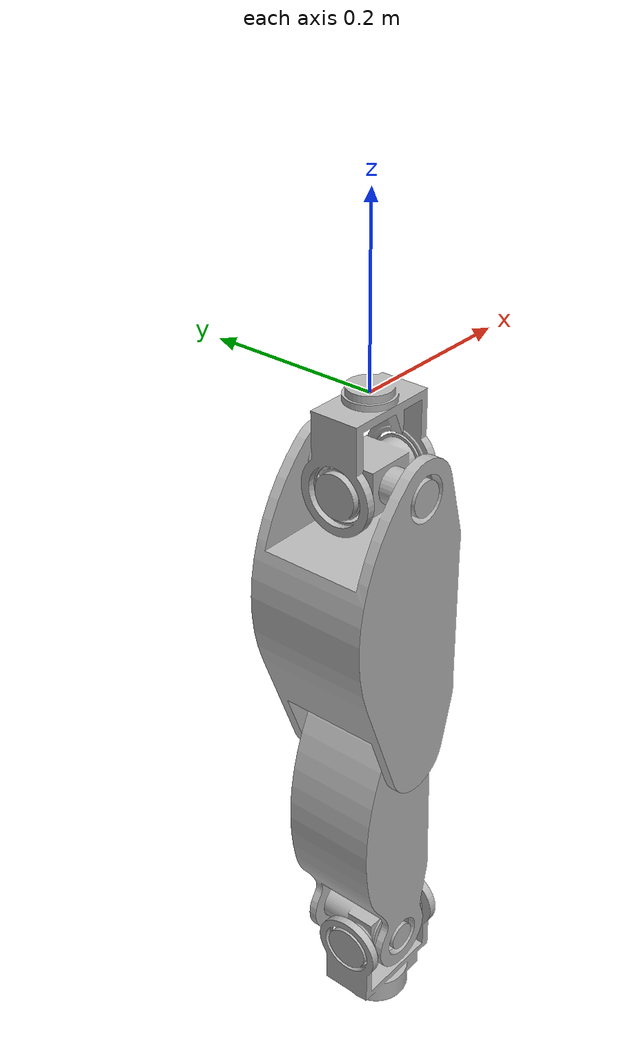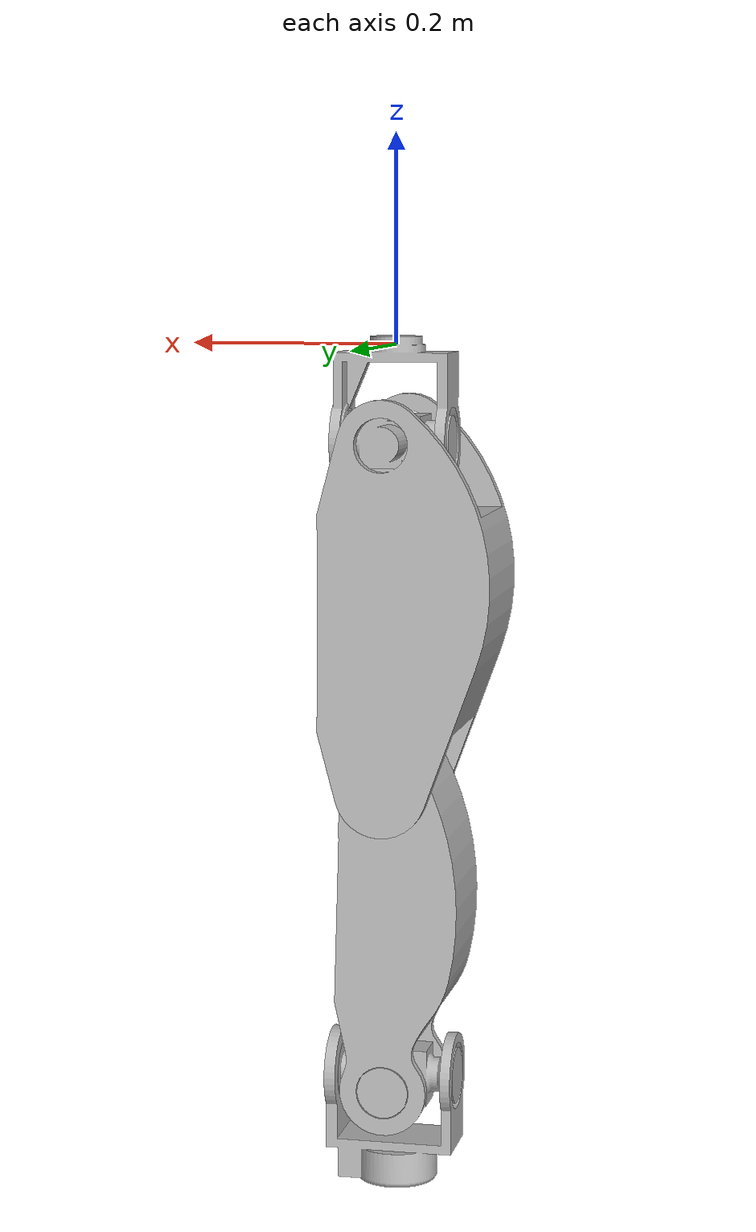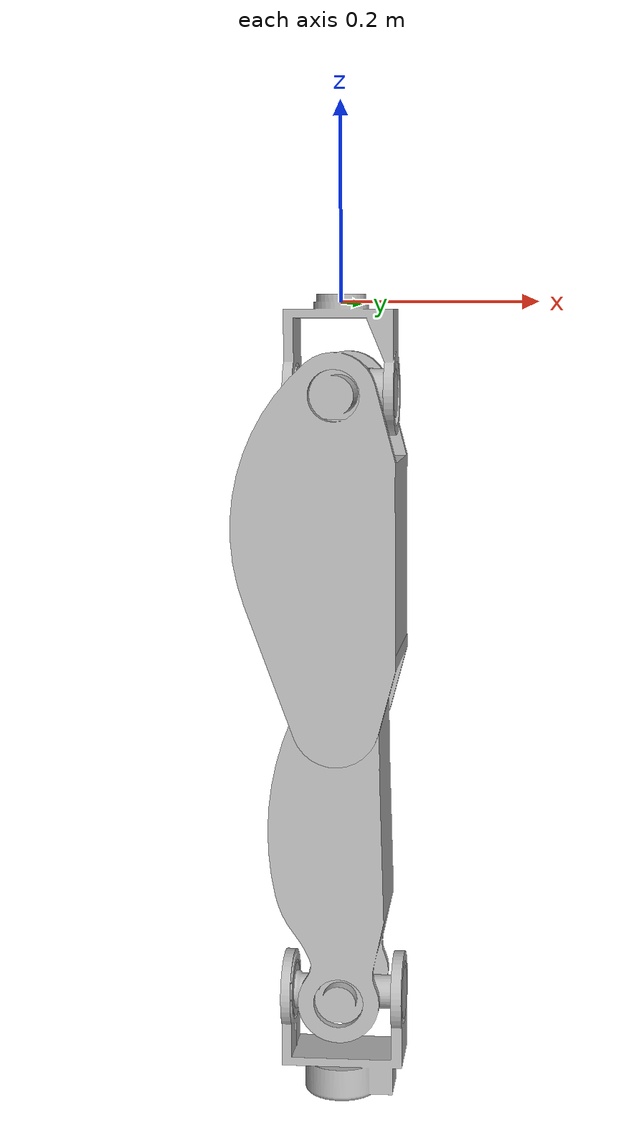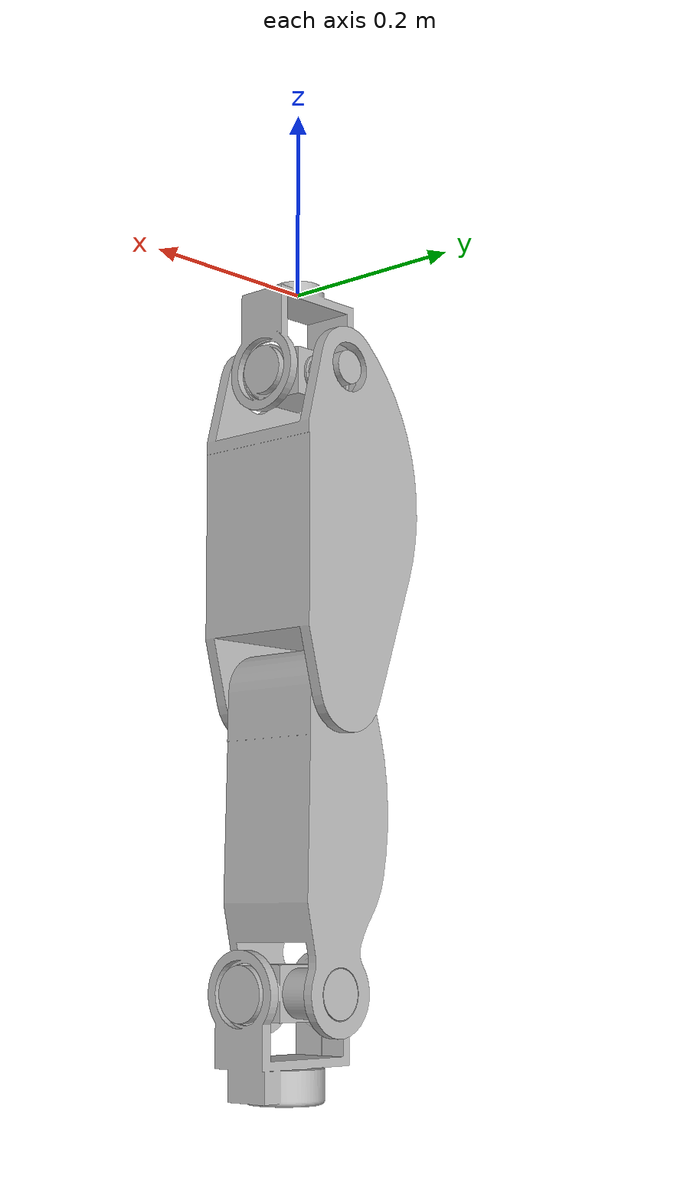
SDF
<?xml version='1.0'?>
<sdf version='1.6'>
  <model name='teo_leftLeg'>

    <link name='AxialLeftHip_link'>
      <pose>0 0 0 0 -0 0</pose>
      <inertial>
        <pose>0.000089 -0.000389 -0.065985 0 -0 0</pose>
        <mass>0.84945</mass>
        <inertia>
          <ixx>0.001564202</ixx>
          <ixy>0.0000025</ixy>
          <ixz>0</ixz>
          <iyy>0.002645089</iyy>
          <iyz>0</iyz>
          <izz>0.001706349</izz>
        </inertia>
      </inertial>
      <visual name='AxialLeftHip_visual'>
        <geometry>
          <mesh>
            <uri>model://teo/meshes/visual/AxialLeftHip.dae</uri>
          </mesh>
        </geometry>
      </visual>
    </link>

    <joint name='AxialLeftHip' type='revolute'>
      <parent>teo::RootWaist_links</parent>
      <child>teo_leftLeg::AxialLeftHip_link</child>
      <axis>
        <xyz>0 0 1</xyz>
        <limit>
          <lower>-0.49</lower>
          <upper>0.57</upper>
        </limit>
      </axis>
    </joint>

    <link name='SagittalLeftHip_link'>
      <pose>0 0 -0.092 0 -0 0</pose>
      <inertial>
        <pose>-0.00011 -0.000988 0.000214 0 -0 0</pose>
        <mass>1.45459</mass>
        <inertia>
          <ixx>0.001545815</ixx>
          <ixy>-0.00000297</ixy>
          <ixz>-4.07e-09</ixz>
          <iyy>0.00119159</iyy>
          <iyz>9.16e-09</iyz>
          <izz>0.002270482</izz>
        </inertia>
      </inertial>
      <visual name='SagittalLeftHip_visual'>
        <geometry>
          <mesh>
            <uri>model://teo/meshes/visual/SagittalLeftHip.dae</uri>
          </mesh>
        </geometry>
      </visual>
    </link>

    <joint name='SagittalLeftHip' type='revolute'>
      <parent>teo_leftLeg::AxialLeftHip_link</parent>
      <child>teo_leftLeg::SagittalLeftHip_link</child>
      <axis>
        <xyz>1 0 0</xyz>
        <limit>
          <lower>-0.22</lower>
          <upper>0.25</upper>
        </limit>
      </axis>
    </joint>

    <link name='FrontalLeftHip_link'>
      <pose>0 0 -0.092 0 -0 0</pose>
      <inertial>
        <pose>-0.010862 -0.000006 -0.161205 0 -0 0</pose>
        <mass>1.89152</mass>
        <inertia>
          <ixx>0.015077735</ixx>
          <ixy>0</ixy>
          <ixz>-0.000442074</ixz>
          <iyy>0.015112044</iyy>
          <iyz>0</iyz>
          <izz>0.00747346</izz>
        </inertia>
      </inertial>
      <visual name='FrontalLeftHip_visual'>
        <geometry>
          <mesh>
            <uri>model://teo/meshes/visual/FrontalLeftHip.dae</uri>
          </mesh>
        </geometry>
      </visual>
    </link>

    <joint name='FrontalLeftHip' type='revolute'>
      <parent>teo_leftLeg::SagittalLeftHip_link</parent>
      <child>teo_leftLeg::FrontalLeftHip_link</child>
      <axis>
        <xyz>0 1 0</xyz>
        <limit>
          <lower>-0.55</lower>
          <upper>0.74</upper>
        </limit>
      </axis>
    </joint>

    <link name='FrontalLeftKnee_link'>
      <pose>0 0 -0.422 0 -0 0</pose>
      <inertial>
        <pose>-0.006614 -0.000411 -0.146413 0 -0 0</pose>
        <mass>1.94824</mass>
        <inertia>
          <ixx>0.02186171</ixx>
          <ixy>0</ixy>
          <ixz>0.00000316</ixz>
          <iyy>0.021411109</iyy>
          <iyz>0</iyz>
          <izz>0.003843636</izz>
        </inertia>
      </inertial>
      <visual name='FrontalLeftKnee_visual'>
        <geometry>
          <mesh>
            <uri>model://teo/meshes/visual/FrontalLeftKnee.dae</uri>
          </mesh>
        </geometry>
      </visual>
    </link>

    <joint name='FrontalLeftKnee' type='revolute'>
      <parent>teo_leftLeg::FrontalLeftHip_link</parent>
      <child>teo_leftLeg::FrontalLeftKnee_link</child>
      <axis>
        <xyz>0 1 0</xyz>
        <limit>
          <lower>-1.07</lower>
          <upper>1.44</upper>
        </limit>
      </axis>
    </joint>

    <link name='FrontalLeftAnkle_link'>
      <pose>0 -0.0175 -0.722 0 -0 0</pose>
      <inertial>
        <pose>0.001999 0.013793 0.000035 0 -0 0</pose>
        <mass>1.50359</mass>
        <inertia>
          <ixx>0.001392287</ixx>
          <ixy>-0.0000121</ixy>
          <ixz>1e-11</ixz>
          <iyy>0.001590045</iyy>
          <iyz>1e-11</iyz>
          <izz>0.00241606</izz>
        </inertia>
      </inertial>
      <visual name='FrontalLeftAnkle_visual'>
        <geometry>
          <mesh>
            <uri>model://teo/meshes/visual/FrontalLeftAnkle.dae</uri>
          </mesh>
        </geometry>
      </visual>
    </link>

    <joint name='FrontalLeftAnkle' type='revolute'>
      <parent>teo_leftLeg::FrontalLeftKnee_link</parent>
      <child>teo_leftLeg::FrontalLeftAnkle_link</child>
      <axis>
        <xyz>0 1 0</xyz>
        <limit>
          <lower>-0.4</lower>
          <upper>0.44</upper>
        </limit>
      </axis>
    </joint>

    <link name='SagittalLeftAnkle_link'>
      <pose>0 -0.0175 -0.722 0 -0 0</pose>
      <inertial>
        <pose>0.010136 -0.000799 -0.0669 0 -0 0</pose>
        <mass>3.1334</mass>
        <inertia>
          <ixx>0.007763728</ixx>
          <ixy>-0.000524258</ixy>
          <ixz>-0.001424772</ixz>
          <iyy>0.014591641</iyy>
          <iyz>0.000173925</iyz>
          <izz>0.013164253</izz>
        </inertia>
      </inertial>
      <visual name='SagittalLeftAnkle_visual'>
        <geometry>
          <mesh>
            <uri>model://teo/meshes/visual/SagittalLeftAnkle.dae</uri>
          </mesh>
        </geometry>
      </visual>
    </link>

    <joint name='SagittalLeftAnkle' type='revolute'>
      <parent>teo_leftLeg::FrontalLeftAnkle_link</parent>
      <child>teo_leftLeg::SagittalLeftAnkle_link</child>
      <axis>
        <xyz>1 0 0</xyz>
        <limit>
          <lower>-0.74</lower>
          <upper>0.35</upper>
        </limit>
      </axis>
    </joint>

    <link name='LeftFoot_link'>
      <pose>0.0525 -0.0175 -0.84 0 -0 0</pose>
      <collision name='LeftFoot_collision'>
        <geometry>
          <box>
            <size>0.245 0.14 0.01</size>
          </box>
        </geometry>
        <max_contacts>4</max_contacts>
        <surface>
          <contact>
            <ode>
              <kp>18000000</kp>
              <kd>100</kd>
              <max_vel>100</max_vel>
              <min_depth>0.0001</min_depth>
            </ode>
          </contact>
          <friction>
            <ode/>
          </friction>
        </surface>
      </collision>
    </link>

    <joint name='LeftFoot' type='fixed'>
      <parent>teo_leftLeg::SagittalLeftAnkle_link</parent>
      <child>teo_leftLeg::LeftFoot_link</child>
    </joint>

    <plugin name='controlboard_leftLeg' filename='libgazebo_yarp_controlboard.so'>
      <yarpConfigurationFile>model://teo/conf/gazebo_teo_leftLeg.ini</yarpConfigurationFile>
    </plugin>

  </model>
</sdf>
